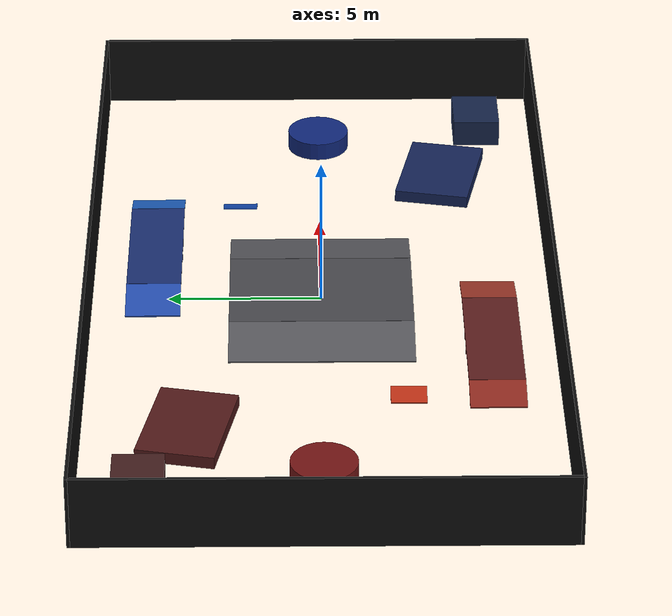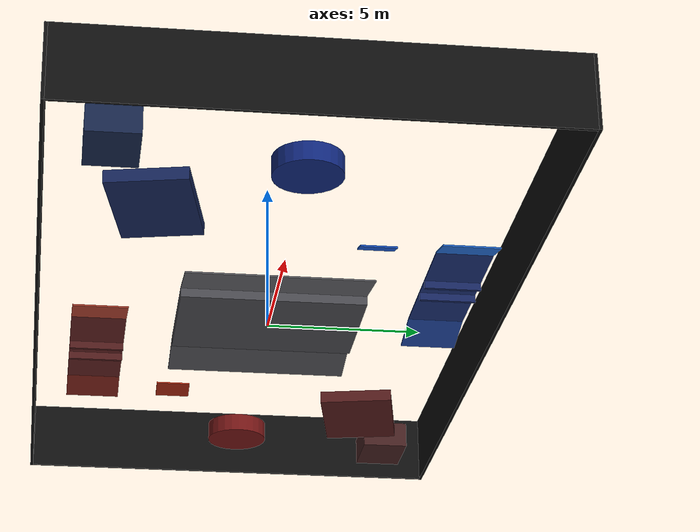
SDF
<?xml version="1.0"?>
<sdf version="1.7">
  <model name="rmuc2026_navigation_field">
    <static>true</static>
    <link name="field_link">
      <!-- 28 m x 15 m outer boundary. The 2.4 m height follows rule 4.1. -->
      <collision name="north_wall_collision">
        <pose>0 7.55 1.20 0 0 0</pose>
        <geometry><box><size>28.20 0.10 2.40</size></box></geometry>
      </collision>
      <visual name="north_wall_visual">
        <pose>0 7.55 1.20 0 0 0</pose>
        <geometry><box><size>28.20 0.10 2.40</size></box></geometry>
        <material><ambient>0.05 0.05 0.05 1</ambient><diffuse>0.05 0.05 0.05 1</diffuse></material>
      </visual>
      <collision name="south_wall_collision">
        <pose>0 -7.55 1.20 0 0 0</pose>
        <geometry><box><size>28.20 0.10 2.40</size></box></geometry>
      </collision>
      <visual name="south_wall_visual">
        <pose>0 -7.55 1.20 0 0 0</pose>
        <geometry><box><size>28.20 0.10 2.40</size></box></geometry>
        <material><ambient>0.05 0.05 0.05 1</ambient><diffuse>0.05 0.05 0.05 1</diffuse></material>
      </visual>
      <collision name="west_wall_collision">
        <pose>-14.05 0 1.20 0 0 0</pose>
        <geometry><box><size>0.10 15.00 2.40</size></box></geometry>
      </collision>
      <visual name="west_wall_visual">
        <pose>-14.05 0 1.20 0 0 0</pose>
        <geometry><box><size>0.10 15.00 2.40</size></box></geometry>
        <material><ambient>0.05 0.05 0.05 1</ambient><diffuse>0.05 0.05 0.05 1</diffuse></material>
      </visual>
      <collision name="east_wall_collision">
        <pose>14.05 0 1.20 0 0 0</pose>
        <geometry><box><size>0.10 15.00 2.40</size></box></geometry>
      </collision>
      <visual name="east_wall_visual">
        <pose>14.05 0 1.20 0 0 0</pose>
        <geometry><box><size>0.10 15.00 2.40</size></box></geometry>
        <material><ambient>0.05 0.05 0.05 1</ambient><diffuse>0.05 0.05 0.05 1</diffuse></material>
      </visual>

      <!-- Central highland: 0.35 m deck and two continuous 10.5 degree ramps. -->
      <collision name="central_deck_collision">
        <pose>0 0 0.175 0 0 0</pose>
        <geometry><box><size>4.00 6.00 0.35</size></box></geometry>
      </collision>
      <visual name="central_deck_visual">
        <pose>0 0 0.175 0 0 0</pose>
        <geometry><box><size>4.00 6.00 0.35</size></box></geometry>
        <material><ambient>0.28 0.28 0.30 1</ambient><diffuse>0.28 0.28 0.30 1</diffuse></material>
      </visual>
      <collision name="central_west_ramp_collision">
        <pose>-2.946 0 0.150 0 -0.183260 0</pose>
        <geometry><box><size>1.924 6.00 0.05</size></box></geometry>
      </collision>
      <visual name="central_west_ramp_visual">
        <pose>-2.946 0 0.150 0 -0.183260 0</pose>
        <geometry><box><size>1.924 6.00 0.05</size></box></geometry>
        <material><ambient>0.34 0.34 0.36 1</ambient><diffuse>0.34 0.34 0.36 1</diffuse></material>
      </visual>
      <collision name="central_east_ramp_collision">
        <pose>2.946 0 0.150 0 0.183260 0</pose>
        <geometry><box><size>1.924 6.00 0.05</size></box></geometry>
      </collision>
      <visual name="central_east_ramp_visual">
        <pose>2.946 0 0.150 0 0.183260 0</pose>
        <geometry><box><size>1.924 6.00 0.05</size></box></geometry>
        <material><ambient>0.34 0.34 0.36 1</ambient><diffuse>0.34 0.34 0.36 1</diffuse></material>
      </visual>

      <!-- Red road: 0.25 m tunnel clearance, 0.30 m driving surface. -->
      <collision name="red_road_roof_collision">
        <pose>-3.0 -5.5 0.275 0 0 0</pose>
        <geometry><box><size>5.00 1.80 0.05</size></box></geometry>
      </collision>
      <visual name="red_road_roof_visual">
        <pose>-3.0 -5.5 0.275 0 0 0</pose>
        <geometry><box><size>5.00 1.80 0.05</size></box></geometry>
        <material><ambient>0.36 0.12 0.12 1</ambient><diffuse>0.36 0.12 0.12 1</diffuse></material>
      </visual>
      <collision name="red_tunnel_west_wall_collision">
        <pose>-3.45 -5.5 0.125 0 0 0</pose>
        <geometry><box><size>0.10 1.80 0.25</size></box></geometry>
      </collision>
      <visual name="red_tunnel_west_wall_visual">
        <pose>-3.45 -5.5 0.125 0 0 0</pose>
        <geometry><box><size>0.10 1.80 0.25</size></box></geometry>
        <material><ambient>0.30 0.10 0.10 1</ambient><diffuse>0.30 0.10 0.10 1</diffuse></material>
      </visual>
      <collision name="red_tunnel_east_wall_collision">
        <pose>-2.55 -5.5 0.125 0 0 0</pose>
        <geometry><box><size>0.10 1.80 0.25</size></box></geometry>
      </collision>
      <visual name="red_tunnel_east_wall_visual">
        <pose>-2.55 -5.5 0.125 0 0 0</pose>
        <geometry><box><size>0.10 1.80 0.25</size></box></geometry>
        <material><ambient>0.30 0.10 0.10 1</ambient><diffuse>0.30 0.10 0.10 1</diffuse></material>
      </visual>
      <collision name="red_road_15_ramp_collision">
        <pose>-6.060 -5.5 0.126 0 -0.261799 0</pose>
        <geometry><box><size>1.159 1.80 0.05</size></box></geometry>
      </collision>
      <visual name="red_road_15_ramp_visual">
        <pose>-6.060 -5.5 0.126 0 -0.261799 0</pose>
        <geometry><box><size>1.159 1.80 0.05</size></box></geometry>
        <material><ambient>0.55 0.16 0.12 1</ambient><diffuse>0.55 0.16 0.12 1</diffuse></material>
      </visual>
      <collision name="red_road_11_ramp_collision">
        <pose>0.272 -5.5 0.125 0 0.191986 0</pose>
        <geometry><box><size>1.572 1.80 0.05</size></box></geometry>
      </collision>
      <visual name="red_road_11_ramp_visual">
        <pose>0.272 -5.5 0.125 0 0.191986 0</pose>
        <geometry><box><size>1.572 1.80 0.05</size></box></geometry>
        <material><ambient>0.62 0.22 0.16 1</ambient><diffuse>0.62 0.22 0.16 1</diffuse></material>
      </visual>

      <!-- Blue road, center-symmetric counterpart. -->
      <collision name="blue_road_roof_collision">
        <pose>3.0 5.5 0.275 0 0 0</pose>
        <geometry><box><size>5.00 1.80 0.05</size></box></geometry>
      </collision>
      <visual name="blue_road_roof_visual">
        <pose>3.0 5.5 0.275 0 0 0</pose>
        <geometry><box><size>5.00 1.80 0.05</size></box></geometry>
        <material><ambient>0.10 0.18 0.44 1</ambient><diffuse>0.10 0.18 0.44 1</diffuse></material>
      </visual>
      <collision name="blue_tunnel_west_wall_collision">
        <pose>2.55 5.5 0.125 0 0 0</pose>
        <geometry><box><size>0.10 1.80 0.25</size></box></geometry>
      </collision>
      <visual name="blue_tunnel_west_wall_visual">
        <pose>2.55 5.5 0.125 0 0 0</pose>
        <geometry><box><size>0.10 1.80 0.25</size></box></geometry>
        <material><ambient>0.08 0.14 0.36 1</ambient><diffuse>0.08 0.14 0.36 1</diffuse></material>
      </visual>
      <collision name="blue_tunnel_east_wall_collision">
        <pose>3.45 5.5 0.125 0 0 0</pose>
        <geometry><box><size>0.10 1.80 0.25</size></box></geometry>
      </collision>
      <visual name="blue_tunnel_east_wall_visual">
        <pose>3.45 5.5 0.125 0 0 0</pose>
        <geometry><box><size>0.10 1.80 0.25</size></box></geometry>
        <material><ambient>0.08 0.14 0.36 1</ambient><diffuse>0.08 0.14 0.36 1</diffuse></material>
      </visual>
      <collision name="blue_road_11_ramp_collision">
        <pose>-0.272 5.5 0.125 0 -0.191986 0</pose>
        <geometry><box><size>1.572 1.80 0.05</size></box></geometry>
      </collision>
      <visual name="blue_road_11_ramp_visual">
        <pose>-0.272 5.5 0.125 0 -0.191986 0</pose>
        <geometry><box><size>1.572 1.80 0.05</size></box></geometry>
        <material><ambient>0.14 0.30 0.68 1</ambient><diffuse>0.14 0.30 0.68 1</diffuse></material>
      </visual>
      <collision name="blue_road_15_ramp_collision">
        <pose>6.060 5.5 0.126 0 0.261799 0</pose>
        <geometry><box><size>1.159 1.80 0.05</size></box></geometry>
      </collision>
      <visual name="blue_road_15_ramp_visual">
        <pose>6.060 5.5 0.126 0 0.261799 0</pose>
        <geometry><box><size>1.159 1.80 0.05</size></box></geometry>
        <material><ambient>0.12 0.38 0.76 1</ambient><diffuse>0.12 0.38 0.76 1</diffuse></material>
      </visual>

      <!-- Representative non-traversable major field modules. -->
      <collision name="red_base_collision">
        <pose>-10.5 0 0.30 0 0 0</pose>
        <geometry><cylinder><radius>1.05</radius><length>0.60</length></cylinder></geometry>
      </collision>
      <visual name="red_base_visual">
        <pose>-10.5 0 0.30 0 0 0</pose>
        <geometry><cylinder><radius>1.05</radius><length>0.60</length></cylinder></geometry>
        <material><ambient>0.45 0.08 0.08 1</ambient><diffuse>0.45 0.08 0.08 1</diffuse></material>
      </visual>
      <collision name="blue_base_collision">
        <pose>10.5 0 0.30 0 0 0</pose>
        <geometry><cylinder><radius>1.05</radius><length>0.60</length></cylinder></geometry>
      </collision>
      <visual name="blue_base_visual">
        <pose>10.5 0 0.30 0 0 0</pose>
        <geometry><cylinder><radius>1.05</radius><length>0.60</length></cylinder></geometry>
        <material><ambient>0.06 0.15 0.48 1</ambient><diffuse>0.06 0.15 0.48 1</diffuse></material>
      </visual>
      <collision name="red_trapezoid_highland_collision">
        <pose>-8.0 4.2 0.20 0 0 -0.20</pose>
        <geometry><box><size>3.6 2.5 0.40</size></box></geometry>
      </collision>
      <visual name="red_trapezoid_highland_visual">
        <pose>-8.0 4.2 0.20 0 0 -0.20</pose>
        <geometry><box><size>3.6 2.5 0.40</size></box></geometry>
        <material><ambient>0.32 0.10 0.10 1</ambient><diffuse>0.32 0.10 0.10 1</diffuse></material>
      </visual>
      <collision name="blue_trapezoid_highland_collision">
        <pose>8.0 -4.2 0.20 0 0 -0.20</pose>
        <geometry><box><size>3.6 2.5 0.40</size></box></geometry>
      </collision>
      <visual name="blue_trapezoid_highland_visual">
        <pose>8.0 -4.2 0.20 0 0 -0.20</pose>
        <geometry><box><size>3.6 2.5 0.40</size></box></geometry>
        <material><ambient>0.08 0.14 0.34 1</ambient><diffuse>0.08 0.14 0.34 1</diffuse></material>
      </visual>

      <!-- 17 degree fly ramps are visible/collidable but not costmap-filtered. -->
      <collision name="red_fly_ramp_collision">
        <pose>-6.0 -2.7 0.076 0 -0.296706 0</pose>
        <geometry><box><size>0.680 1.145 0.05</size></box></geometry>
      </collision>
      <visual name="red_fly_ramp_visual">
        <pose>-6.0 -2.7 0.076 0 -0.296706 0</pose>
        <geometry><box><size>0.680 1.145 0.05</size></box></geometry>
        <material><ambient>0.72 0.18 0.08 1</ambient><diffuse>0.72 0.18 0.08 1</diffuse></material>
      </visual>
      <collision name="blue_fly_ramp_collision">
        <pose>6.0 2.7 0.076 0 0.296706 0</pose>
        <geometry><box><size>0.680 1.145 0.05</size></box></geometry>
      </collision>
      <visual name="blue_fly_ramp_visual">
        <pose>6.0 2.7 0.076 0 0.296706 0</pose>
        <geometry><box><size>0.680 1.145 0.05</size></box></geometry>
        <material><ambient>0.08 0.30 0.72 1</ambient><diffuse>0.08 0.30 0.72 1</diffuse></material>
      </visual>

      <collision name="red_resource_station_collision">
        <pose>-11.5 5.6 0.45 0 0 0</pose>
        <geometry><box><size>2.0 1.6 0.90</size></box></geometry>
      </collision>
      <visual name="red_resource_station_visual">
        <pose>-11.5 5.6 0.45 0 0 0</pose>
        <geometry><box><size>2.0 1.6 0.90</size></box></geometry>
        <material><ambient>0.26 0.12 0.12 1</ambient><diffuse>0.26 0.12 0.12 1</diffuse></material>
      </visual>
      <collision name="blue_resource_station_collision">
        <pose>11.5 -5.6 0.45 0 0 0</pose>
        <geometry><box><size>2.0 1.6 0.90</size></box></geometry>
      </collision>
      <visual name="blue_resource_station_visual">
        <pose>11.5 -5.6 0.45 0 0 0</pose>
        <geometry><box><size>2.0 1.6 0.90</size></box></geometry>
        <material><ambient>0.08 0.14 0.28 1</ambient><diffuse>0.08 0.14 0.28 1</diffuse></material>
      </visual>
    </link>
  </model>
</sdf>
